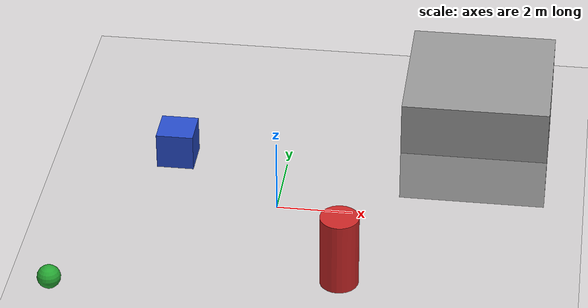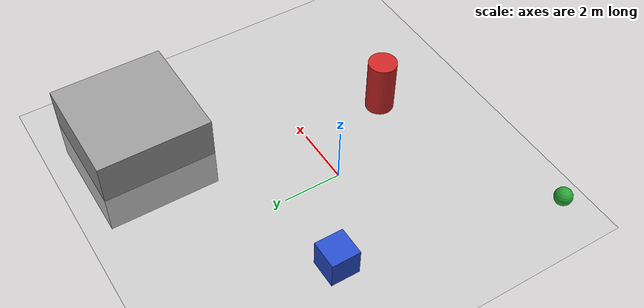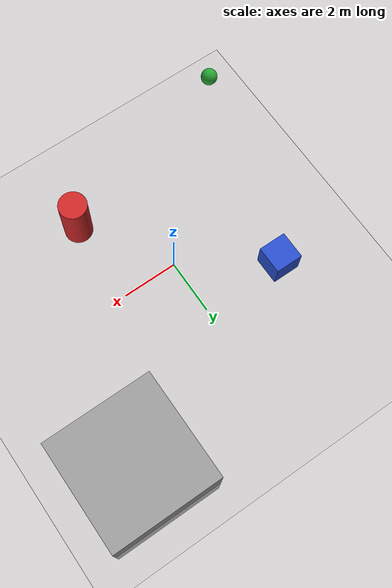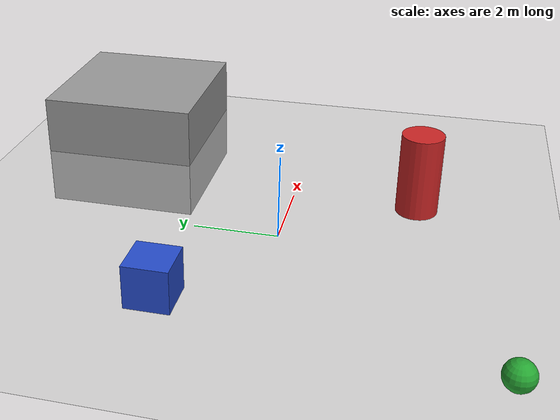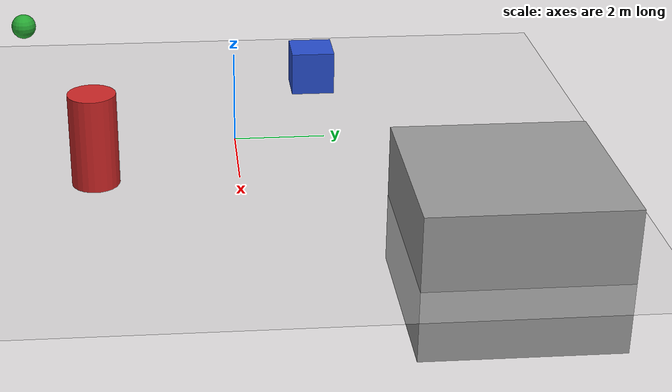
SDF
<sdf version="1.6">
 <world name="simple_terrain_world">
  <include><uri>model://ground_plane</uri></include>
  <include><uri>model://sun</uri></include>
  <model name="box_obstacle_1">
   <pose>-3 2 0.5 0 0 0</pose>
   <static>true</static>
   <link name="box_link">
    <collision name="box_collision"><geometry><box><size>1 1 1</size></box></geometry></collision>
    <visual name="box_visual">
     <geometry><box><size>1 1 1</size></box></geometry>
     <material>
      <script><uri>file://media/materials/scripts/gazebo.material</uri><name>Gazebo/Blue</name></script>
     </material>
    </visual>
   </link>
  </model>
  <model name="cylinder_obstacle">
   <pose>2 -3 1 0 0 0</pose>
   <static>true</static>
   <link name="cylinder_link">
    <collision name="cylinder_collision">
     <geometry><cylinder><radius>0.5</radius><length>2</length></cylinder></geometry>
    </collision>
    <visual name="cylinder_visual">
     <geometry><cylinder><radius>0.5</radius><length>2</length></cylinder></geometry>
     <material>
      <script><uri>file://media/materials/scripts/gazebo.material</uri><name>Gazebo/Red</name></script>
     </material>
    </visual>
   </link>
  </model>
  <model name="moving_sphere">
   <pose>-5 -5 1 0 0 0</pose>
   <static>false</static>
   <link name="sphere_link">
    <collision name="sphere_collision"><geometry><sphere><radius>0.3</radius></sphere></geometry></collision>
    <visual name="sphere_visual">
     <geometry><sphere><radius>0.3</radius></sphere></geometry>
     <material>
      <script><uri>file://media/materials/scripts/gazebo.material</uri><name>Gazebo/Green</name></script>
     </material>
    </visual>
    <inertial><mass>1.0</mass><inertia><ixx>0.01</ixx><iyy>0.01</iyy><izz>0.01</izz></inertia></inertial>
   </link>
   <plugin name="model_pusher" filename="libgazebo_ros_p3d.so">
    <alwaysOn>true</alwaysOn>
    <updateRate>10</updateRate>
    <bodyName>sphere_link</bodyName>
    <topicName>moving_sphere/pose</topicName>
   </plugin>
  </model>
  <light name="directional_light" type="directional">
   <pose>0 0 10 0 0 0</pose>
   <diffuse>1 1 1 1</diffuse>
   <specular>0.5 0.5 0.5 1</specular>
   <attenuation>
    <range>1000</range>
    <constant>0.9</constant>
    <linear>0.01</linear>
    <quadratic>0.001</quadratic>
   </attenuation>
   <direction>-0.3 0.3 -1</direction>
  </light>
  <model name="simple_building">
   <pose>5 5 0 0 0 0</pose>
   <static>true</static>
   <link name="building_link">
    <collision name="building_collision"><geometry><box><size>4 4 3</size></box></geometry></collision>
    <visual name="building_visual">
     <geometry><box><size>4 4 3</size></box></geometry>
     <material>
      <script><uri>file://media/materials/scripts/gazebo.material</uri><name>Gazebo/Grey</name></script>
     </material>
    </visual>
   </link>
  </model>
 </world>
</sdf>
